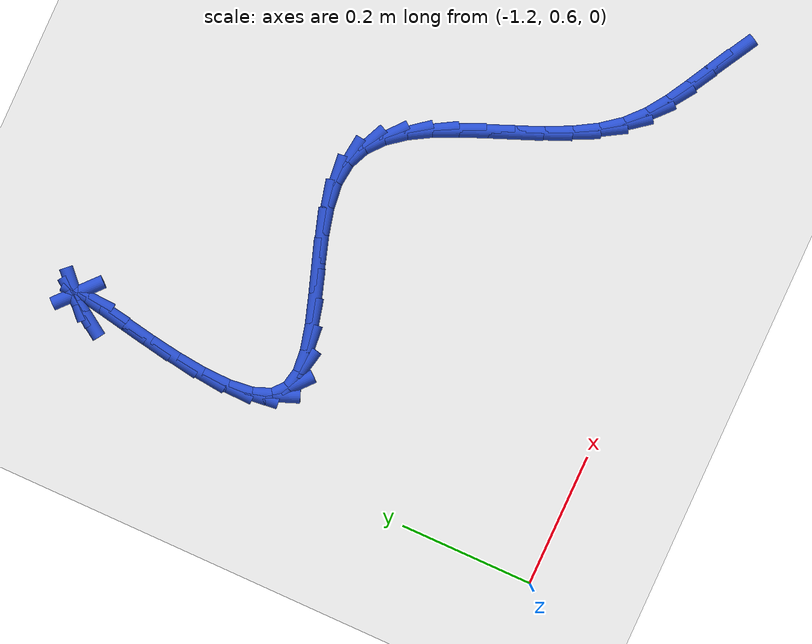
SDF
<sdf version="1.6">
 <world name="default">
  <model name="ground_plane">
   <static>1</static>
   <link name="link">
    <collision name="collision">
     <geometry><plane><normal>0 0 1</normal><size>100 100</size></plane></geometry>
     <surface><friction><ode><mu>100</mu><mu2>50</mu2></ode></friction></surface>
    </collision>
    <visual name="visual">
     <cast_shadows>0</cast_shadows>
     <geometry><plane><normal>0 0 1</normal><size>100 100</size></plane></geometry>
     <material>
      <script><uri>file://media/materials/scripts/gazebo.material</uri><name>Gazebo/WhiteGlow</name></script>
     </material>
    </visual>
   </link>
  </model>
  <model name="line">
   <link name="link_22">
    <pose>-0.390899640397929 0.6505750743566852 0.01 0 1.57 -0.5186660651034908</pose>
    <collision name="collision">
     <geometry><cylinder><radius>0.01</radius><length>0.08</length></cylinder></geometry>
    </collision>
    <visual name="visual">
     <material>
      <script><name>Gazebo/Blue</name><uri>file://media/materials/scripts/gazebo.material</uri></script>
     </material>
     <geometry><cylinder><radius>0.01</radius><length>0.08</length></cylinder></geometry>
    </visual>
   </link>
   <link name="link_23">
    <pose>-0.42300099231869714 0.6688982674929815 0.01 0 1.57 -0.49745060301187355</pose>
    <collision name="collision">
     <geometry><cylinder><radius>0.01</radius><length>0.08</length></cylinder></geometry>
    </collision>
    <visual name="visual">
     <material>
      <script><name>Gazebo/Blue</name><uri>file://media/materials/scripts/gazebo.material</uri></script>
     </material>
     <geometry><cylinder><radius>0.01</radius><length>0.08</length></cylinder></geometry>
    </visual>
   </link>
   <link name="link_24">
    <pose>-0.45517577425606764 0.6863690721309254 0.01 0 1.57 -0.5217485570939469</pose>
    <collision name="collision">
     <geometry><cylinder><radius>0.01</radius><length>0.08</length></cylinder></geometry>
    </collision>
    <visual name="visual">
     <material>
      <script><name>Gazebo/Blue</name><uri>file://media/materials/scripts/gazebo.material</uri></script>
     </material>
     <geometry><cylinder><radius>0.01</radius><length>0.08</length></cylinder></geometry>
    </visual>
   </link>
   <link name="link_25">
    <pose>-0.4865296979349367 0.7043940020436651 0.01 0 1.57 -0.6036882795614128</pose>
    <collision name="collision">
     <geometry><cylinder><radius>0.01</radius><length>0.08</length></cylinder></geometry>
    </collision>
    <visual name="visual">
     <material>
      <script><name>Gazebo/Blue</name><uri>file://media/materials/scripts/gazebo.material</uri></script>
     </material>
     <geometry><cylinder><radius>0.01</radius><length>0.08</length></cylinder></geometry>
    </visual>
   </link>
   <link name="link_26">
    <pose>-0.5159926603953607 0.7247106322183118 0.01 0 1.57 -0.7430085725916532</pose>
    <collision name="collision">
     <geometry><cylinder><radius>0.01</radius><length>0.08</length></cylinder></geometry>
    </collision>
    <visual name="visual">
     <material>
      <script><name>Gazebo/Blue</name><uri>file://media/materials/scripts/gazebo.material</uri></script>
     </material>
     <geometry><cylinder><radius>0.01</radius><length>0.08</length></cylinder></geometry>
    </visual>
   </link>
   <link name="link_27">
    <pose>-0.5424948299959679 0.7490560993720549 0.01 0 1.57 -0.9101919167858923</pose>
    <collision name="collision">
     <geometry><cylinder><radius>0.01</radius><length>0.08</length></cylinder></geometry>
    </collision>
    <visual name="visual">
     <material>
      <script><name>Gazebo/Blue</name><uri>file://media/materials/scripts/gazebo.material</uri></script>
     </material>
     <geometry><cylinder><radius>0.01</radius><length>0.08</length></cylinder></geometry>
    </visual>
   </link>
   <link name="link_28">
    <pose>-0.5653758503830528 0.7785012039356963 0.01 0 1.57 -1.0379359335360465</pose>
    <collision name="collision">
     <geometry><cylinder><radius>0.01</radius><length>0.08</length></cylinder></geometry>
    </collision>
    <visual name="visual">
     <material>
      <script><name>Gazebo/Blue</name><uri>file://media/materials/scripts/gazebo.material</uri></script>
     </material>
     <geometry><cylinder><radius>0.01</radius><length>0.08</length></cylinder></geometry>
    </visual>
   </link>
   <link name="link_29">
    <pose>-0.5852027410874225 0.8121194461035615 0.01 0 1.57 -1.1221076226531532</pose>
    <collision name="collision">
     <geometry><cylinder><radius>0.01</radius><length>0.08</length></cylinder></geometry>
    </collision>
    <visual name="visual">
     <material>
      <script><name>Gazebo/Blue</name><uri>file://media/materials/scripts/gazebo.material</uri></script>
     </material>
     <geometry><cylinder><radius>0.01</radius><length>0.08</length></cylinder></geometry>
    </visual>
   </link>
   <link name="link_30">
    <pose>-0.6027715189691599 0.8486116803094669 0.01 0 1.57 -1.1705249542729292</pose>
    <collision name="collision">
     <geometry><cylinder><radius>0.01</radius><length>0.08</length></cylinder></geometry>
    </collision>
    <visual name="visual">
     <material>
      <script><name>Gazebo/Blue</name><uri>file://media/materials/scripts/gazebo.material</uri></script>
     </material>
     <geometry><cylinder><radius>0.01</radius><length>0.08</length></cylinder></geometry>
    </visual>
   </link>
   <link name="link_31">
    <pose>-0.6188782008883477 0.8866787609872284 0.01 0 1.57 -1.1879653254964875</pose>
    <collision name="collision">
     <geometry><cylinder><radius>0.01</radius><length>0.08</length></cylinder></geometry>
    </collision>
    <visual name="visual">
     <material>
      <script><name>Gazebo/Blue</name><uri>file://media/materials/scripts/gazebo.material</uri></script>
     </material>
     <geometry><cylinder><radius>0.01</radius><length>0.08</length></cylinder></geometry>
    </visual>
   </link>
   <link name="link_32">
    <pose>-0.6343188037050683 0.9250215425706622 0.01 0 1.57 -1.1755300130543112</pose>
    <collision name="collision">
     <geometry><cylinder><radius>0.01</radius><length>0.08</length></cylinder></geometry>
    </collision>
    <visual name="visual">
     <material>
      <script><name>Gazebo/Blue</name><uri>file://media/materials/scripts/gazebo.material</uri></script>
     </material>
     <geometry><cylinder><radius>0.01</radius><length>0.08</length></cylinder></geometry>
    </visual>
   </link>
   <link name="link_33">
    <pose>-0.6498893442794046 0.9623408794935835 0.01 0 1.57 -1.130312068448243</pose>
    <collision name="collision">
     <geometry><cylinder><radius>0.01</radius><length>0.08</length></cylinder></geometry>
    </collision>
    <visual name="visual">
     <material>
      <script><name>Gazebo/Blue</name><uri>file://media/materials/scripts/gazebo.material</uri></script>
     </material>
     <geometry><cylinder><radius>0.01</radius><length>0.08</length></cylinder></geometry>
    </visual>
   </link>
   <link name="link_34">
    <pose>-0.6663858394714394 0.9973376261898089 0.01 0 1.57 -1.044712783987775</pose>
    <collision name="collision">
     <geometry><cylinder><radius>0.01</radius><length>0.08</length></cylinder></geometry>
    </collision>
    <visual name="visual">
     <material>
      <script><name>Gazebo/Blue</name><uri>file://media/materials/scripts/gazebo.material</uri></script>
     </material>
     <geometry><cylinder><radius>0.01</radius><length>0.08</length></cylinder></geometry>
    </visual>
   </link>
   <link name="link_35">
    <pose>-0.6846043061412549 1.028712637093154 0.01 0 1.57 -0.9059717873614976</pose>
    <collision name="collision">
     <geometry><cylinder><radius>0.01</radius><length>0.08</length></cylinder></geometry>
    </collision>
    <visual name="visual">
     <material>
      <script><name>Gazebo/Blue</name><uri>file://media/materials/scripts/gazebo.material</uri></script>
     </material>
     <geometry><cylinder><radius>0.01</radius><length>0.08</length></cylinder></geometry>
    </visual>
   </link>
   <link name="link_36">
    <pose>-0.7053407611489346 1.0551667666374356 0.01 0 1.57 -0.6994324989188095</pose>
    <collision name="collision">
     <geometry><cylinder><radius>0.01</radius><length>0.08</length></cylinder></geometry>
    </collision>
    <visual name="visual">
     <material>
      <script><name>Gazebo/Blue</name><uri>file://media/materials/scripts/gazebo.material</uri></script>
     </material>
     <geometry><cylinder><radius>0.01</radius><length>0.08</length></cylinder></geometry>
    </visual>
   </link>
   <link name="link_37">
    <pose>-0.7293912213545606 1.0754008692564685 0.01 0 1.57 -0.42411456107680556</pose>
    <collision name="collision">
     <geometry><cylinder><radius>0.01</radius><length>0.08</length></cylinder></geometry>
    </collision>
    <visual name="visual">
     <material>
      <script><name>Gazebo/Blue</name><uri>file://media/materials/scripts/gazebo.material</uri></script>
     </material>
     <geometry><cylinder><radius>0.01</radius><length>0.08</length></cylinder></geometry>
    </visual>
   </link>
   <link name="link_38">
    <pose>-0.7575517036182158 1.08811579938407 0.01 0 1.57 -0.12081651928637793</pose>
    <collision name="collision">
     <geometry><cylinder><radius>0.01</radius><length>0.08</length></cylinder></geometry>
    </collision>
    <visual name="visual">
     <material>
      <script><name>Gazebo/Blue</name><uri>file://media/materials/scripts/gazebo.material</uri></script>
     </material>
     <geometry><cylinder><radius>0.01</radius><length>0.08</length></cylinder></geometry>
    </visual>
   </link>
   <link name="link_39">
    <pose>-0.79054943366285 1.092121981521475 0.01 0 1.57 0.10658094657249761</pose>
    <collision name="collision">
     <geometry><cylinder><radius>0.01</radius><length>0.08</length></cylinder></geometry>
    </collision>
    <visual name="visual">
     <material>
      <script><name>Gazebo/Blue</name><uri>file://media/materials/scripts/gazebo.material</uri></script>
     </material>
     <geometry><cylinder><radius>0.01</radius><length>0.08</length></cylinder></geometry>
    </visual>
   </link>
   <link name="link_40">
    <pose>-0.8279227131867954 1.0881235504786053 0.01 0 1.57 0.23627785186078104</pose>
    <collision name="collision">
     <geometry><cylinder><radius>0.01</radius><length>0.08</length></cylinder></geometry>
    </collision>
    <visual name="visual">
     <material>
      <script><name>Gazebo/Blue</name><uri>file://media/materials/scripts/gazebo.material</uri></script>
     </material>
     <geometry><cylinder><radius>0.01</radius><length>0.08</length></cylinder></geometry>
    </visual>
   </link>
   <link name="link_41">
    <pose>-0.8682054258702996 1.0784244714293816 0.01 0 1.57 0.30323379472429</pose>
    <collision name="collision">
     <geometry><cylinder><radius>0.01</radius><length>0.08</length></cylinder></geometry>
    </collision>
    <visual name="visual">
     <material>
      <script><name>Gazebo/Blue</name><uri>file://media/materials/scripts/gazebo.material</uri></script>
     </material>
     <geometry><cylinder><radius>0.01</radius><length>0.08</length></cylinder></geometry>
    </visual>
   </link>
   <link name="link_42">
    <pose>-0.9098998947503801 1.0653789791311443 0.01 0 1.57 0.3253833499726771</pose>
    <collision name="collision">
     <geometry><cylinder><radius>0.01</radius><length>0.08</length></cylinder></geometry>
    </collision>
    <visual name="visual">
     <material>
      <script><name>Gazebo/Blue</name><uri>file://media/materials/scripts/gazebo.material</uri></script>
     </material>
     <geometry><cylinder><radius>0.01</radius><length>0.08</length></cylinder></geometry>
    </visual>
   </link>
   <link name="link_43">
    <pose>-0.9515084428640542 1.0513413083412344 0.01 0 1.57 0.3067000916274043</pose>
    <collision name="collision">
     <geometry><cylinder><radius>0.01</radius><length>0.08</length></cylinder></geometry>
    </collision>
    <visual name="visual">
     <material>
      <script><name>Gazebo/Blue</name><uri>file://media/materials/scripts/gazebo.material</uri></script>
     </material>
     <geometry><cylinder><radius>0.01</radius><length>0.08</length></cylinder></geometry>
    </visual>
   </link>
   <link name="link_44">
    <pose>-0.9915333932483394 1.0386656938169918 0.01 0 1.57 0.23791980464423504</pose>
    <collision name="collision">
     <geometry><cylinder><radius>0.01</radius><length>0.08</length></cylinder></geometry>
    </collision>
    <visual name="visual">
     <material>
      <script><name>Gazebo/Blue</name><uri>file://media/materials/scripts/gazebo.material</uri></script>
     </material>
     <geometry><cylinder><radius>0.01</radius><length>0.08</length></cylinder></geometry>
    </visual>
   </link>
   <link name="link_45">
    <pose>-1.0284770689402536 1.0297063703157576 0.01 0 1.57 0.08902169457782318</pose>
    <collision name="collision">
     <geometry><cylinder><radius>0.01</radius><length>0.08</length></cylinder></geometry>
    </collision>
    <visual name="visual">
     <material>
      <script><name>Gazebo/Blue</name><uri>file://media/materials/scripts/gazebo.material</uri></script>
     </material>
     <geometry><cylinder><radius>0.01</radius><length>0.08</length></cylinder></geometry>
    </visual>
   </link>
   <link name="link_46">
    <pose>-1.0608417929768135 1.0268175725948727 0.01 0 1.57 -0.2075554879373817</pose>
    <collision name="collision">
     <geometry><cylinder><radius>0.01</radius><length>0.08</length></cylinder></geometry>
    </collision>
    <visual name="visual">
     <material>
      <script><name>Gazebo/Blue</name><uri>file://media/materials/scripts/gazebo.material</uri></script>
     </material>
     <geometry><cylinder><radius>0.01</radius><length>0.08</length></cylinder></geometry>
    </visual>
   </link>
   <link name="link_47">
    <pose>-1.0871298883950369 1.0323535354116766 0.01 0 1.57 -0.7159685127380863</pose>
    <collision name="collision">
     <geometry><cylinder><radius>0.01</radius><length>0.08</length></cylinder></geometry>
    </collision>
    <visual name="visual">
     <material>
      <script><name>Gazebo/Blue</name><uri>file://media/materials/scripts/gazebo.material</uri></script>
     </material>
     <geometry><cylinder><radius>0.01</radius><length>0.08</length></cylinder></geometry>
    </visual>
   </link>
   <link name="link_48">
    <pose>-1.1058568845556664 1.0486452784578446 0.01 0 1.57 -1.1997037790207523</pose>
    <collision name="collision">
     <geometry><cylinder><radius>0.01</radius><length>0.08</length></cylinder></geometry>
    </collision>
    <visual name="visual">
     <material>
      <script><name>Gazebo/Blue</name><uri>file://media/materials/scripts/gazebo.material</uri></script>
     </material>
     <geometry><cylinder><radius>0.01</radius><length>0.08</length></cylinder></geometry>
    </visual>
   </link>
   <link name="link_49">
    <pose>-1.116577707339217 1.0761966923192445 0.01 0 1.57 -1.4596148018771482</pose>
    <collision name="collision">
     <geometry><cylinder><radius>0.01</radius><length>0.08</length></cylinder></geometry>
    </collision>
    <visual name="visual">
     <material>
      <script><name>Gazebo/Blue</name><uri>file://media/materials/scripts/gazebo.material</uri></script>
     </material>
     <geometry><cylinder><radius>0.01</radius><length>0.08</length></cylinder></geometry>
    </visual>
   </link>
   <link name="link_50">
    <pose>-1.120619169354247 1.1123969122872868 0.01 0 1.57 1.5436608416807422</pose>
    <collision name="collision">
     <geometry><cylinder><radius>0.01</radius><length>0.08</length></cylinder></geometry>
    </collision>
    <visual name="visual">
     <material>
      <script><name>Gazebo/Blue</name><uri>file://media/materials/scripts/gazebo.material</uri></script>
     </material>
     <geometry><cylinder><radius>0.01</radius><length>0.08</length></cylinder></geometry>
    </visual>
   </link>
   <link name="link_51">
    <pose>-1.1194809845084055 1.1543311347907883 0.01 0 1.57 1.4635501939387812</pose>
    <collision name="collision">
     <geometry><cylinder><radius>0.01</radius><length>0.08</length></cylinder></geometry>
    </collision>
    <visual name="visual">
     <material>
      <script><name>Gazebo/Blue</name><uri>file://media/materials/scripts/gazebo.material</uri></script>
     </material>
     <geometry><cylinder><radius>0.01</radius><length>0.08</length></cylinder></geometry>
    </visual>
   </link>
   <link name="link_52">
    <pose>-1.1146628667093426 1.199084556258569 0.01 0 1.57 1.4153503527048863</pose>
    <collision name="collision">
     <geometry><cylinder><radius>0.01</radius><length>0.08</length></cylinder></geometry>
    </collision>
    <visual name="visual">
     <material>
      <script><name>Gazebo/Blue</name><uri>file://media/materials/scripts/gazebo.material</uri></script>
     </material>
     <geometry><cylinder><radius>0.01</radius><length>0.08</length></cylinder></geometry>
    </visual>
   </link>
   <link name="link_53">
    <pose>-1.107664529864707 1.2437423731194464 0.01 0 1.57 1.3884665997531134</pose>
    <collision name="collision">
     <geometry><cylinder><radius>0.01</radius><length>0.08</length></cylinder></geometry>
    </collision>
    <visual name="visual">
     <material>
      <script><name>Gazebo/Blue</name><uri>file://media/materials/scripts/gazebo.material</uri></script>
     </material>
     <geometry><cylinder><radius>0.01</radius><length>0.08</length></cylinder></geometry>
    </visual>
   </link>
   <link name="link_54">
    <pose>-1.0999856878821483 1.2853897818022402 0.01 0 1.57 1.3810785484940047</pose>
    <collision name="collision">
     <geometry><cylinder><radius>0.01</radius><length>0.08</length></cylinder></geometry>
    </collision>
    <visual name="visual">
     <material>
      <script><name>Gazebo/Blue</name><uri>file://media/materials/scripts/gazebo.material</uri></script>
     </material>
     <geometry><cylinder><radius>0.01</radius><length>0.08</length></cylinder></geometry>
    </visual>
   </link>
   <link name="link_55">
    <pose>-1.093126054669316 1.3211119787357677 0.01 0 1.57 1.4034642523657805</pose>
    <collision name="collision">
     <geometry><cylinder><radius>0.01</radius><length>0.08</length></cylinder></geometry>
    </collision>
    <visual name="visual">
     <material>
      <script><name>Gazebo/Blue</name><uri>file://media/materials/scripts/gazebo.material</uri></script>
     </material>
     <geometry><cylinder><radius>0.01</radius><length>0.08</length></cylinder></geometry>
    </visual>
   </link>
   <link name="link_56">
    <pose>-1.0885853441338587 1.3479941603488486 0.01 0 1.57 1.5201099779218397</pose>
    <collision name="collision">
     <geometry><cylinder><radius>0.01</radius><length>0.08</length></cylinder></geometry>
    </collision>
    <visual name="visual">
     <material>
      <script><name>Gazebo/Blue</name><uri>file://media/materials/scripts/gazebo.material</uri></script>
     </material>
     <geometry><cylinder><radius>0.01</radius><length>0.08</length></cylinder></geometry>
    </visual>
   </link>
   <link name="link_57">
    <pose>-1.0878107086369837 1.3632639919086096 0.01 0 1.57 -0.7328079389996761</pose>
    <collision name="collision">
     <geometry><cylinder><radius>0.01</radius><length>0.08</length></cylinder></geometry>
    </collision>
    <visual name="visual">
     <material>
      <script><name>Gazebo/Blue</name><uri>file://media/materials/scripts/gazebo.material</uri></script>
     </material>
     <geometry><cylinder><radius>0.01</radius><length>0.08</length></cylinder></geometry>
    </visual>
   </link>
   <link name="link_58">
    <pose>-1.0913880550065913 1.3664835572625327 0.01 0 1.57 0.7557595258914901</pose>
    <collision name="collision">
     <geometry><cylinder><radius>0.01</radius><length>0.08</length></cylinder></geometry>
    </collision>
    <visual name="visual">
     <material>
      <script><name>Gazebo/Blue</name><uri>file://media/materials/scripts/gazebo.material</uri></script>
     </material>
     <geometry><cylinder><radius>0.01</radius><length>0.08</length></cylinder></geometry>
    </visual>
   </link>
   <link name="link_59">
    <pose>-1.0991998512193764 1.3591216215248256 0.01 0 1.57 0.9433103808243845</pose>
    <collision name="collision">
     <geometry><cylinder><radius>0.01</radius><length>0.08</length></cylinder></geometry>
    </collision>
    <visual name="visual">
     <material>
      <script><name>Gazebo/Blue</name><uri>file://media/materials/scripts/gazebo.material</uri></script>
     </material>
     <geometry><cylinder><radius>0.01</radius><length>0.08</length></cylinder></geometry>
    </visual>
   </link>
   <link name="link_60">
    <pose>-1.1111079708956262 1.342702771113125 0.01 0 1.57 0.9857227454308445</pose>
    <collision name="collision">
     <geometry><cylinder><radius>0.01</radius><length>0.08</length></cylinder></geometry>
    </collision>
    <visual name="visual">
     <material>
      <script><name>Gazebo/Blue</name><uri>file://media/materials/scripts/gazebo.material</uri></script>
     </material>
     <geometry><cylinder><radius>0.01</radius><length>0.08</length></cylinder></geometry>
    </visual>
   </link>
  </model>
 </world>
</sdf>
